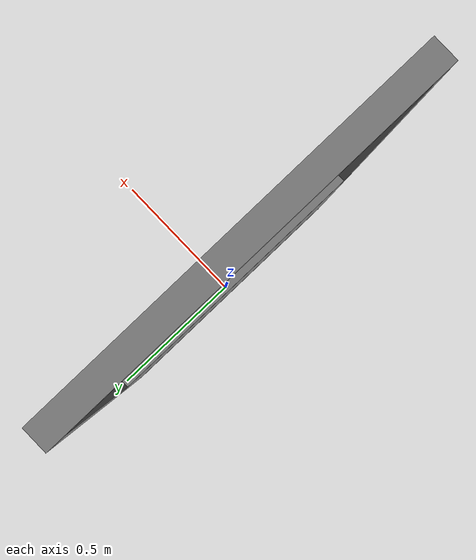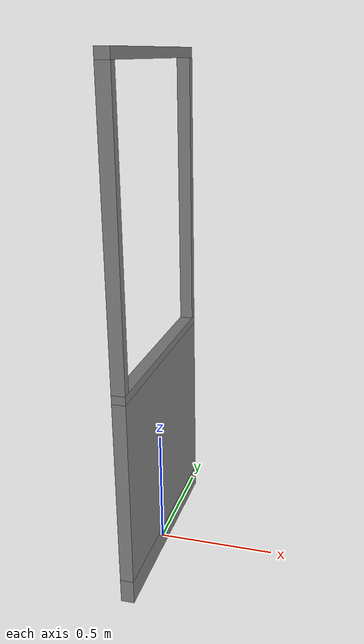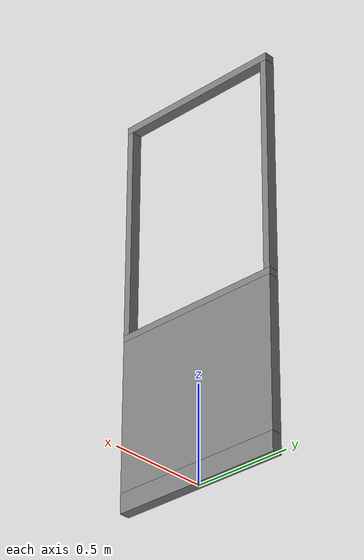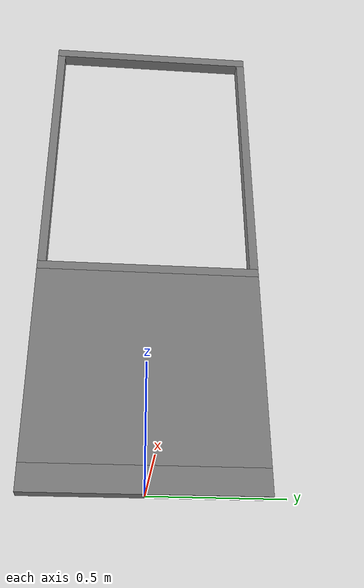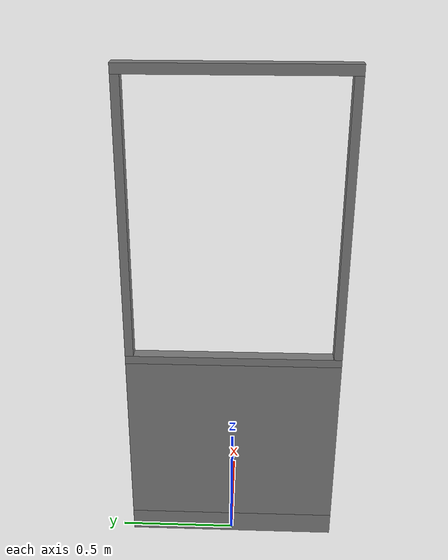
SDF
<?xml version="1.0" ?>
<sdf version="1.4">
    <model name='half_glass_wall_55_900_2090'>
      <link name='link'>
        <inertial>
          <mass>50</mass>
          <inertia>
            <ixx>1</ixx>
            <ixy>0</ixy>
            <ixz>0</ixz>
            <iyy>1</iyy>
            <iyz>0</iyz>
            <izz>1</izz>
          </inertia>
        </inertial>
        <visual name='bottom_frame'>
          <pose>0 0 0.05 0 0 0</pose>
          <geometry>
            <box>
              <size>0.055 0.9 0.1</size>
            </box>
          </geometry>
          <material>
            <!-- hsr_color/white -->
            <name>white</name>
            <ambient>1 1 1 1</ambient>
            <diffuse>0.5 0.5 0.5 1</diffuse>
            <specular>0 0 0 1</specular>
            <emissive>0 0 0 1</emissive>
            <shading>gouraud</shading>
            <receive_shadows>on</receive_shadows>
          </material>
        </visual>
        <collision name='collision_bottom_frame'>
          <pose>0 0 0.05 0 0 0</pose>
          <geometry>
            <box>
              <size>0.055 0.9 0.1</size>
            </box>
          </geometry>
          <max_contacts>10</max_contacts>
          <surface>
            <bounce/>
            <friction>
              <ode/>
            </friction>
            <contact>
              <ode/>
            </contact>
          </surface>
        </collision>
        <visual name='wall'>
          <pose>0 0 0.4875 0 0 0</pose>
          <geometry>
            <box>
              <size>0.055 0.9 0.775</size>
            </box>
          </geometry>
          <material>
            <!-- wall/white_noise -->
            <name>white_noise</name>
            <ambient>1 1 1 1</ambient>
            <diffuse>0.5 0.5 0.5 1.0</diffuse>
            <specular>0 0 0 1.0</specular>
            <shininess>12.5</shininess>
            <pbr>
              <metal>
                <albedo_map>model://base_materials/wall/textures/wall_white_noise.png</albedo_map>
                <max_anisotropy>16</max_anisotropy>
                <metalness>0</metalness>
              </metal>
            </pbr>
          </material>
        </visual>
        <collision name='collision_wall'>
          <pose>0 0 0.4875 0 0 0</pose>
          <geometry>
            <box>
              <size>0.055 0.9 0.775</size>
            </box>
          </geometry>
          <max_contacts>10</max_contacts>
          <surface>
            <bounce/>
            <friction>
              <ode/>
            </friction>
            <contact>
              <ode/>
            </contact>
          </surface>
        </collision>
        <visual name='center_frame'>
          <pose>0 0 0.8925 0 0 0</pose>
          <geometry>
            <box>
              <size>0.055 0.9 0.035</size>
            </box>
          </geometry>
          <material>
            <!-- hsr_color/white -->
            <name>white</name>
            <ambient>1 1 1 1</ambient>
            <diffuse>0.5 0.5 0.5 1</diffuse>
            <specular>0 0 0 1</specular>
            <emissive>0 0 0 1</emissive>
            <shading>gouraud</shading>
            <receive_shadows>on</receive_shadows>
          </material>
        </visual>
        <collision name='collision_center_frame'>
          <pose>0 0 0.8925 0 0 0</pose>
          <geometry>
            <box>
              <size>0.055 0.9 0.035</size>
            </box>
          </geometry>
          <max_contacts>10</max_contacts>
          <surface>
            <bounce/>
            <friction>
              <ode/>
            </friction>
            <contact>
              <ode/>
            </contact>
          </surface>
        </collision>
        <visual name='right_frame'>
          <pose>0 0.4325 1.480 0 0 0</pose>
          <geometry>
            <box>
              <size>0.055 0.035 1.140</size>
            </box>
          </geometry>
          <material>
            <!-- hsr_color/white -->
            <name>white</name>
            <ambient>1 1 1 1</ambient>
            <diffuse>0.5 0.5 0.5 1</diffuse>
            <specular>0 0 0 1</specular>
            <emissive>0 0 0 1</emissive>
            <shading>gouraud</shading>
            <receive_shadows>on</receive_shadows>
          </material>
        </visual>
        <collision name='collision_right_frame'>
          <pose>0 0.4325 1.480 0 0 0</pose>
          <geometry>
            <box>
              <size>0.055 0.035 1.140</size>
            </box>
          </geometry>
          <max_contacts>10</max_contacts>
          <surface>
            <bounce/>
            <friction>
              <ode/>
            </friction>
            <contact>
              <ode/>
            </contact>
          </surface>
        </collision>
        <visual name='left_frame'>
          <pose>0 -0.4325 1.480 0 0 0</pose>
          <geometry>
            <box>
              <size>0.055 0.035 1.140</size>
            </box>
          </geometry>
          <material>
            <!-- hsr_color/white -->
            <name>white</name>
            <ambient>1 1 1 1</ambient>
            <diffuse>0.5 0.5 0.5 1</diffuse>
            <specular>0 0 0 1</specular>
            <emissive>0 0 0 1</emissive>
            <shading>gouraud</shading>
            <receive_shadows>on</receive_shadows>
          </material>
        </visual>
        <collision name='collision_left_frame'>
          <pose>0 -0.4325 1.480 0 0 0</pose>
          <geometry>
            <box>
              <size>0.055 0.035 1.140</size>
            </box>
          </geometry>
          <max_contacts>10</max_contacts>
          <surface>
            <bounce/>
            <friction>
              <ode/>
            </friction>
            <contact>
              <ode/>
            </contact>
          </surface>
        </collision>
        <visual name='top_frame'>
          <pose>0 0 2.070 0 0 0</pose>
          <geometry>
            <box>
              <size>0.055 0.9 0.04</size>
            </box>
          </geometry>
          <material>
            <!-- hsr_color/white -->
            <name>white</name>
            <ambient>1 1 1 1</ambient>
            <diffuse>0.5 0.5 0.5 1</diffuse>
            <specular>0 0 0 1</specular>
            <emissive>0 0 0 1</emissive>
            <shading>gouraud</shading>
            <receive_shadows>on</receive_shadows>
          </material>
        </visual>
        <collision name='collision_top_frame'>
          <pose>0 0 2.070 0 0 0</pose>
          <geometry>
            <box>
              <size>0.055 0.9 0.04</size>
            </box>
          </geometry>
          <max_contacts>10</max_contacts>
          <surface>
            <bounce/>
            <friction>
              <ode/>
            </friction>
            <contact>
              <ode/>
            </contact>
          </surface>
        </collision>
        <velocity_decay>
          <linear>0</linear>
          <angular>0</angular>
        </velocity_decay>
        <self_collide>0</self_collide>
        <kinematic>0</kinematic>
        <gravity>1</gravity>
      </link>
      <static>1</static>
    </model>
</sdf>
